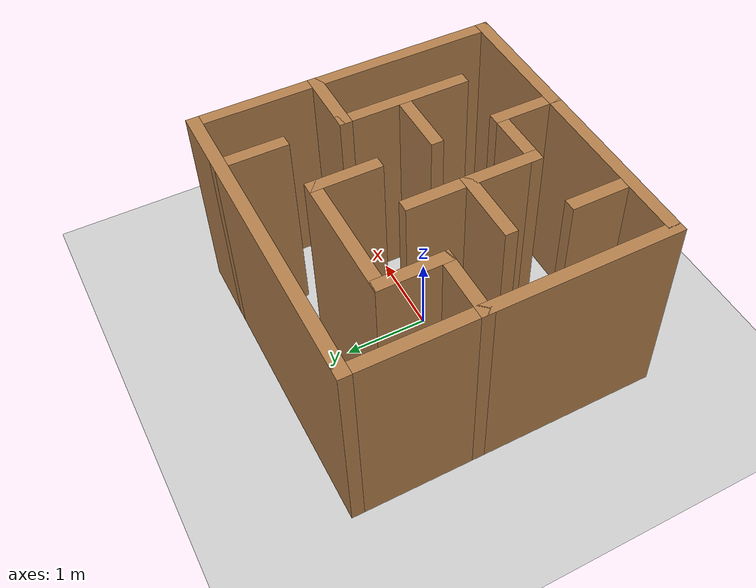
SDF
<sdf version="1.7">
 <world name="default">
  <light name="sun" type="directional">
   <pose>0 0 10 0 -0 0</pose>
   <diffuse>0.8 0.8 0.8 1</diffuse>
   <specular>0.2 0.2 0.2 1</specular>
   <attenuation>
    <range>1000</range>
    <constant>0.9</constant>
    <linear>0.01</linear>
    <quadratic>0.001</quadratic>
   </attenuation>
   <direction>-0.5 0.1 -0.9</direction>
   <spot><inner_angle>0</inner_angle><outer_angle>0</outer_angle><falloff>0</falloff></spot>
  </light>
  <model name="ground_plane">
   <static>1</static>
   <link name="link">
    <collision name="collision">
     <geometry><plane><normal>0 0 1</normal><size>100 100</size></plane></geometry>
     <surface><friction><ode><mu>100</mu><mu2>50</mu2></ode></friction></surface>
    </collision>
    <visual name="visual">
     <cast_shadows>0</cast_shadows>
     <geometry><plane><normal>0 0 1</normal><size>100 100</size></plane></geometry>
     <material>
      <script><uri>file://media/materials/scripts/gazebo.material</uri><name>Gazebo/Grey</name></script>
     </material>
    </visual>
   </link>
  </model>
  <gravity>0 0 -9.8</gravity>
  <magnetic_field>6e-06 2.3e-05 -4.2e-05</magnetic_field>
  <atmosphere type="adiabatic"/>
  <physics type="ode">
   <max_step_size>0.001</max_step_size>
   <real_time_factor>1</real_time_factor>
   <real_time_update_rate>1000</real_time_update_rate>
  </physics>
  <scene><ambient>0.4 0.4 0.4 1</ambient><background>0.7 0.7 0.7 1</background><shadows>1</shadows></scene>
  <audio><device>default</device></audio>
  <spherical_coordinates>
   <surface_model>EARTH_WGS84</surface_model>
   <latitude_deg>0</latitude_deg>
   <longitude_deg>0</longitude_deg>
   <elevation>0</elevation>
   <heading_deg>0</heading_deg>
  </spherical_coordinates>
  <model name="Untitled">
   <pose>-0.01 0.004945 0 0 -0 0</pose>
   <link name="Wall_10">
    <collision name="Wall_10_Collision">
     <geometry><box><size>3.87 0.15 2.5</size></box></geometry>
     <pose>0 0 1.25 0 -0 0</pose>
    </collision>
    <visual name="Wall_10_Visual">
     <pose>0 0 1.25 0 -0 0</pose>
     <geometry><box><size>3.87 0.15 2.5</size></box></geometry>
     <material>
      <script><uri>file://media/materials/scripts/gazebo.material</uri><name>Gazebo/Wood</name></script>
      <ambient>1 1 1 1</ambient>
     </material>
     <meta><layer>0</layer></meta>
    </visual>
    <pose>-0 1.81506 0 0 -0 0</pose>
   </link>
   <link name="Wall_12">
    <collision name="Wall_12_Collision">
     <geometry><box><size>0.840072 0.15 2.5</size></box></geometry>
     <pose>0 0 1.25 0 -0 0</pose>
    </collision>
    <visual name="Wall_12_Visual">
     <pose>0 0 1.25 0 -0 0</pose>
     <geometry><box><size>0.840072 0.15 2.5</size></box></geometry>
     <material>
      <script><uri>file://media/materials/scripts/gazebo.material</uri><name>Gazebo/Wood</name></script>
      <ambient>1 1 1 1</ambient>
     </material>
     <meta><layer>0</layer></meta>
    </visual>
    <pose>1.12 1.47005 0 0 -0 -1.5708</pose>
   </link>
   <link name="Wall_14">
    <collision name="Wall_14_Collision">
     <geometry><box><size>0.88 0.15 2.5</size></box></geometry>
     <pose>0 0 1.25 0 -0 0</pose>
    </collision>
    <visual name="Wall_14_Visual">
     <pose>0 0 1.25 0 -0 0</pose>
     <geometry><box><size>0.88 0.15 2.5</size></box></geometry>
     <material>
      <script><uri>file://media/materials/scripts/gazebo.material</uri><name>Gazebo/Wood</name></script>
      <ambient>1 1 1 1</ambient>
     </material>
     <meta><layer>0</layer></meta>
    </visual>
    <pose>-1.495 0.365055 0 0 -0 0</pose>
   </link>
   <link name="Wall_18">
    <collision name="Wall_18_Collision">
     <geometry><box><size>0.87 0.15 2.5</size></box></geometry>
     <pose>0 0 1.25 0 -0 0</pose>
    </collision>
    <visual name="Wall_18_Visual">
     <pose>0 0 1.25 0 -0 0</pose>
     <geometry><box><size>0.87 0.15 2.5</size></box></geometry>
     <material>
      <script><uri>file://media/materials/scripts/gazebo.material</uri><name>Gazebo/Wood</name></script>
      <ambient>1 1 1 1</ambient>
     </material>
     <meta><layer>0</layer></meta>
    </visual>
    <pose>-1.13 0.725055 0 0 -0 1.5708</pose>
   </link>
   <link name="Wall_19">
    <collision name="Wall_19_Collision">
     <geometry><box><size>1.63 0.15 2.5</size></box></geometry>
     <pose>0 0 1.25 0 -0 0</pose>
    </collision>
    <visual name="Wall_19_Visual">
     <pose>0 0 1.25 0 -0 0</pose>
     <geometry><box><size>1.63 0.15 2.5</size></box></geometry>
     <material>
      <script><uri>file://media/materials/scripts/gazebo.material</uri><name>Gazebo/Wood</name></script>
      <ambient>1 1 1 1</ambient>
     </material>
     <meta><layer>0</layer></meta>
    </visual>
    <pose>-0.39 1.08506 0 0 -0 0</pose>
   </link>
   <link name="Wall_20">
    <collision name="Wall_20_Collision">
     <geometry><box><size>0.84 0.15 2.5</size></box></geometry>
     <pose>0 0 1.25 0 -0 0</pose>
    </collision>
    <visual name="Wall_20_Visual">
     <pose>0 0 1.25 0 -0 0</pose>
     <geometry><box><size>0.84 0.15 2.5</size></box></geometry>
     <material>
      <script><uri>file://media/materials/scripts/gazebo.material</uri><name>Gazebo/Wood</name></script>
      <ambient>1 1 1 1</ambient>
     </material>
     <meta><layer>0</layer></meta>
    </visual>
    <pose>0.35 0.740055 0 0 -0 -1.5708</pose>
   </link>
   <link name="Wall_22">
    <collision name="Wall_22_Collision">
     <geometry><box><size>0.830294 0.15 2.5</size></box></geometry>
     <pose>0 0 1.25 0 -0 0</pose>
    </collision>
    <visual name="Wall_22_Visual">
     <pose>0 0 1.25 0 -0 0</pose>
     <geometry><box><size>0.830294 0.15 2.5</size></box></geometry>
     <material>
      <script><uri>file://media/materials/scripts/gazebo.material</uri><name>Gazebo/Wood</name></script>
      <ambient>1 1 1 1</ambient>
     </material>
     <meta><layer>0</layer></meta>
    </visual>
    <pose>-1.11 -1.47494 0 0 -0 1.5708</pose>
   </link>
   <link name="Wall_24">
    <collision name="Wall_24_Collision">
     <geometry><box><size>0.83 0.15 2.5</size></box></geometry>
     <pose>0 0 1.25 0 -0 0</pose>
    </collision>
    <visual name="Wall_24_Visual">
     <pose>0 0 1.25 0 -0 0</pose>
     <geometry><box><size>0.83 0.15 2.5</size></box></geometry>
     <material>
      <script><uri>file://media/materials/scripts/gazebo.material</uri><name>Gazebo/Wood</name></script>
      <ambient>1 1 1 1</ambient>
     </material>
     <meta><layer>0</layer></meta>
    </visual>
    <pose>0.37 -1.47494 0 0 -0 1.5708</pose>
   </link>
   <link name="Wall_26">
    <collision name="Wall_26_Collision">
     <geometry><box><size>0.85 0.15 2.5</size></box></geometry>
     <pose>0 0 1.25 0 -0 0</pose>
    </collision>
    <visual name="Wall_26_Visual">
     <pose>0 0 1.25 0 -0 0</pose>
     <geometry><box><size>0.85 0.15 2.5</size></box></geometry>
     <material>
      <script><uri>file://media/materials/scripts/gazebo.material</uri><name>Gazebo/Wood</name></script>
      <ambient>1 1 1 1</ambient>
     </material>
     <meta><layer>0</layer></meta>
    </visual>
    <pose>0.02 -1.13495 0 0 -0 3.14159</pose>
   </link>
   <link name="Wall_27">
    <collision name="Wall_27_Collision">
     <geometry><box><size>1.63 0.15 2.5</size></box></geometry>
     <pose>0 0 1.25 0 -0 0</pose>
    </collision>
    <visual name="Wall_27_Visual">
     <pose>0 0 1.25 0 -0 0</pose>
     <geometry><box><size>1.63 0.15 2.5</size></box></geometry>
     <material>
      <script><uri>file://media/materials/scripts/gazebo.material</uri><name>Gazebo/Wood</name></script>
      <ambient>1 1 1 1</ambient>
     </material>
     <meta><layer>0</layer></meta>
    </visual>
    <pose>-0.33 -0.394945 0 0 -0 1.5708</pose>
   </link>
   <link name="Wall_30">
    <collision name="Wall_30_Collision">
     <geometry><box><size>0.91 0.15 2.5</size></box></geometry>
     <pose>0 0 1.25 0 -0 0</pose>
    </collision>
    <visual name="Wall_30_Visual">
     <pose>0 0 1.25 0 -0 0</pose>
     <geometry><box><size>0.91 0.15 2.5</size></box></geometry>
     <material>
      <script><uri>file://media/materials/scripts/gazebo.material</uri><name>Gazebo/Wood</name></script>
      <ambient>1 1 1 1</ambient>
     </material>
     <meta><layer>0</layer></meta>
    </visual>
    <pose>-0.71 -0.354945 0 0 -0 3.14159</pose>
   </link>
   <link name="Wall_32">
    <collision name="Wall_32_Collision">
     <geometry><box><size>0.87 0.15 2.5</size></box></geometry>
     <pose>0 0 1.25 0 -0 0</pose>
    </collision>
    <visual name="Wall_32_Visual">
     <pose>0 0 1.25 0 -0 0</pose>
     <geometry><box><size>0.87 0.15 2.5</size></box></geometry>
     <material>
      <script><uri>file://media/materials/scripts/gazebo.material</uri><name>Gazebo/Wood</name></script>
      <ambient>1 1 1 1</ambient>
     </material>
     <meta><layer>0</layer></meta>
    </visual>
    <pose>1.5 0.375055 0 0 -0 3.14159</pose>
   </link>
   <link name="Wall_34">
    <collision name="Wall_34_Collision">
     <geometry><box><size>1.6 0.15 2.5</size></box></geometry>
     <pose>0 0 1.25 0 -0 0</pose>
    </collision>
    <visual name="Wall_34_Visual">
     <pose>0 0 1.25 0 -0 0</pose>
     <geometry><box><size>1.6 0.15 2.5</size></box></geometry>
     <material>
      <script><uri>file://media/materials/scripts/gazebo.material</uri><name>Gazebo/Wood</name></script>
      <ambient>1 1 1 1</ambient>
     </material>
     <meta><layer>0</layer></meta>
    </visual>
    <pose>1.14 -0.349945 0 0 -0 -1.5708</pose>
   </link>
   <link name="Wall_36">
    <collision name="Wall_36_Collision">
     <geometry><box><size>0.89 0.15 2.5</size></box></geometry>
     <pose>0 0 1.25 0 -0 0</pose>
    </collision>
    <visual name="Wall_36_Visual">
     <pose>0 0 1.25 0 -0 0</pose>
     <geometry><box><size>0.89 0.15 2.5</size></box></geometry>
     <material>
      <script><uri>file://media/materials/scripts/gazebo.material</uri><name>Gazebo/Wood</name></script>
      <ambient>1 1 1 1</ambient>
     </material>
     <meta><layer>0</layer></meta>
    </visual>
    <pose>0.77 -0.344945 0 0 -0 3.14159</pose>
   </link>
   <link name="Wall_4">
    <collision name="Wall_4_Collision">
     <geometry><box><size>3.78 0.15 2.5</size></box></geometry>
     <pose>0 0 1.25 0 -0 0</pose>
    </collision>
    <visual name="Wall_4_Visual">
     <pose>0 0 1.25 0 -0 0</pose>
     <geometry><box><size>3.78 0.15 2.5</size></box></geometry>
     <material>
      <script><uri>file://media/materials/scripts/gazebo.material</uri><name>Gazebo/Wood</name></script>
      <ambient>1 1 1 1</ambient>
     </material>
     <meta><layer>0</layer></meta>
    </visual>
    <pose>-1.86 5.5e-05 0 0 -0 -1.5708</pose>
   </link>
   <link name="Wall_6">
    <collision name="Wall_6_Collision">
     <geometry><box><size>3.78 0.15 2.5</size></box></geometry>
     <pose>0 0 1.25 0 -0 0</pose>
    </collision>
    <visual name="Wall_6_Visual">
     <pose>0 0 1.25 0 -0 0</pose>
     <geometry><box><size>3.78 0.15 2.5</size></box></geometry>
     <material>
      <script><uri>file://media/materials/scripts/gazebo.material</uri><name>Gazebo/Wood</name></script>
      <ambient>1 1 1 1</ambient>
     </material>
     <meta><layer>0</layer></meta>
    </visual>
    <pose>1.86 5.5e-05 0 0 -0 -1.5708</pose>
   </link>
   <link name="Wall_8">
    <collision name="Wall_8_Collision">
     <geometry><box><size>3.87 0.15 2.5</size></box></geometry>
     <pose>0 0 1.25 0 -0 0</pose>
    </collision>
    <visual name="Wall_8_Visual">
     <pose>0 0 1.25 0 -0 0</pose>
     <geometry><box><size>3.87 0.15 2.5</size></box></geometry>
     <material>
      <script><uri>file://media/materials/scripts/gazebo.material</uri><name>Gazebo/Wood</name></script>
      <ambient>1 1 1 1</ambient>
     </material>
     <meta><layer>0</layer></meta>
    </visual>
    <pose>-0 -1.81495 0 0 -0 0</pose>
   </link>
   <static>1</static>
  </model>
 </world>
</sdf>
